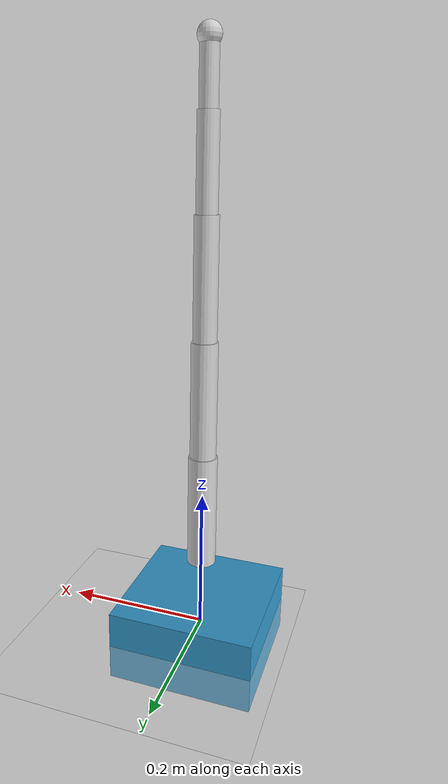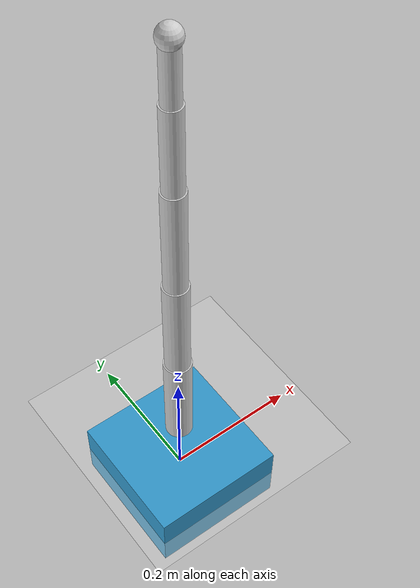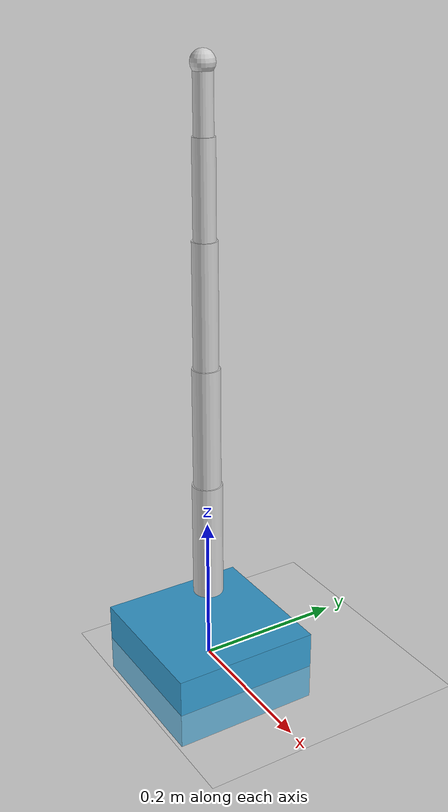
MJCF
<?xml version="1.0" ?>
<mujoco model="pingti_simple">
  <!-- 简化的 PingTi 机械臂仿真模型 -->

  <option timestep="0.002" />

  <default>
    <joint type="hinge" damping="1" />
    <geom material="geom" />
  </default>

  <asset>
    <material name="grid" rgba=".9 .9 .9 1" />
    <material name="geom" rgba=".8 .8 .8 1" />
    <material name="joint" rgba=".2 .6 .8 1" />
  </asset>

  <worldbody>
    <!-- 地面 -->
    <geom name="ground" type="plane" size="5 5 1" material="grid" />
    <light mode="targetbody" target="base" />

    <!-- 基座 -->
    <body name="base" pos="0 0 0">
      <inertial pos="0 0 0" mass="2" diaginertia="0.1 0.1 0.1" />
      <geom name="base_geom" type="box" size="0.1 0.1 0.05" material="joint" />

      <!-- 关节 1: 肩膀转动 (Shoulder Pan) -->
      <body name="link1" pos="0 0 0.1">
        <inertial pos="0 0 0.08" mass="0.5" diaginertia="0.01 0.01 0.01" />
        <joint name="joint1" type="hinge" axis="0 0 1" pos="0 0 0" range="-3.14 3.14" />
        <geom name="link1_geom" type="cylinder" size="0.02 0.08" pos="0 0 0.08" />

        <!-- 关节 2: 肩膀抬起 (Shoulder Lift) -->
        <body name="link2" pos="0 0 0.16">
          <inertial pos="0 0 0.08" mass="0.4" diaginertia="0.005 0.005 0.005" />
          <joint name="joint2" type="hinge" axis="0 1 0" pos="0 0 0" range="-1.57 1.57" />
          <geom name="link2_geom" type="cylinder" size="0.018 0.08" pos="0 0 0.08" />

          <!-- 关节 3: 肘部弯曲 (Elbow Flex) -->
          <body name="link3" pos="0 0 0.16">
            <inertial pos="0 0 0.08" mass="0.3" diaginertia="0.004 0.004 0.004" />
            <joint name="joint3" type="hinge" axis="0 1 0" pos="0 0 0" range="-2.09 2.09" />
            <geom name="link3_geom" type="cylinder" size="0.016 0.08" pos="0 0 0.08" />

            <!-- 关节 4: 腕部弯曲 (Wrist Flex) -->
            <body name="link4" pos="0 0 0.16">
              <inertial pos="0 0 0.06" mass="0.2" diaginertia="0.002 0.002 0.002" />
              <joint name="joint4" type="hinge" axis="0 1 0" pos="0 0 0" range="-1.57 1.57" />
              <geom name="link4_geom" type="cylinder" size="0.014 0.06" pos="0 0 0.06" />

              <!-- 关节 5: 腕部旋转 (Wrist Roll) -->
              <body name="link5" pos="0 0 0.12">
                <inertial pos="0 0 0.04" mass="0.15" diaginertia="0.001 0.001 0.001" />
                <joint name="joint5" type="hinge" axis="1 0 0" pos="0 0 0" range="-3.14 3.14" />
                <geom name="link5_geom" type="cylinder" size="0.012 0.04" pos="0 0 0.04" />

                <!-- 末端执行器 (End Effector) -->
                <body name="end_effector" pos="0 0 0.08">
                  <inertial pos="0 0 0" mass="0.1" diaginertia="0.0005 0.0005 0.0005" />
                  <geom name="ee_geom" type="sphere" size="0.015" material="geom" />
                  <site name="ee_site" pos="0 0 0" size="0.01" />
                </body>
              </body>
            </body>
          </body>
        </body>
      </body>
    </body>
  </worldbody>

  <!-- 执行器 -->
  <actuator>
    <motor name="motor1" joint="joint1" ctrlrange="-1 1" />
    <motor name="motor2" joint="joint2" ctrlrange="-1 1" />
    <motor name="motor3" joint="joint3" ctrlrange="-1 1" />
    <motor name="motor4" joint="joint4" ctrlrange="-1 1" />
    <motor name="motor5" joint="joint5" ctrlrange="-1 1" />
  </actuator>
</mujoco>
